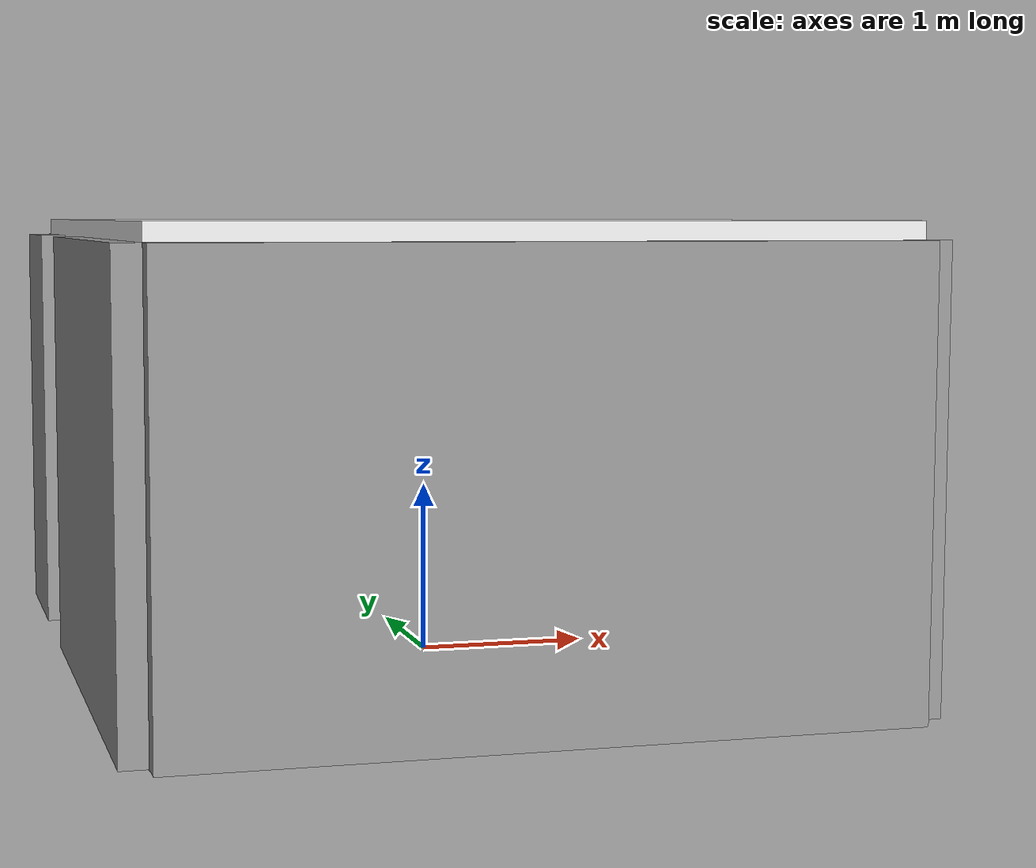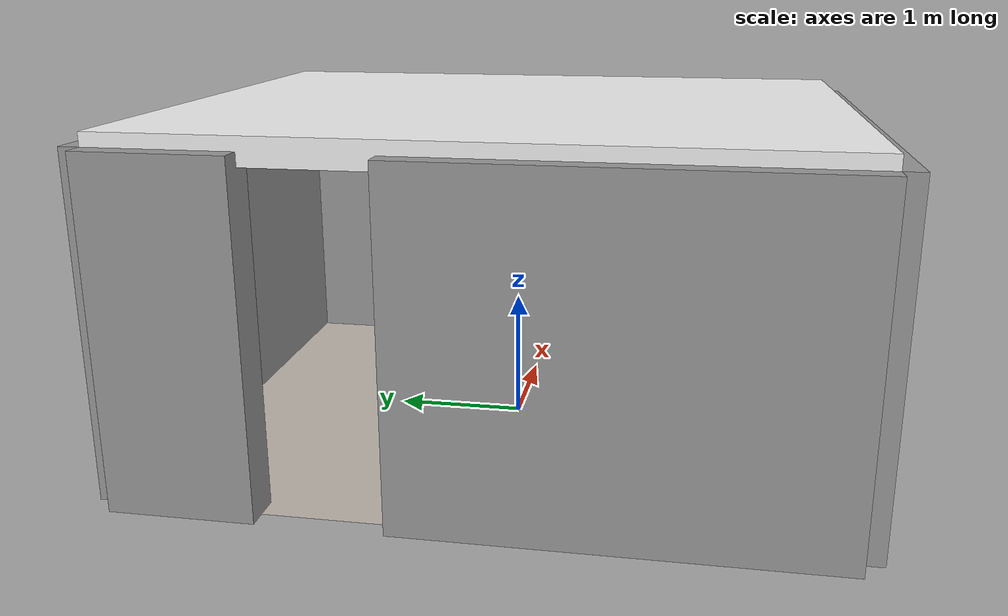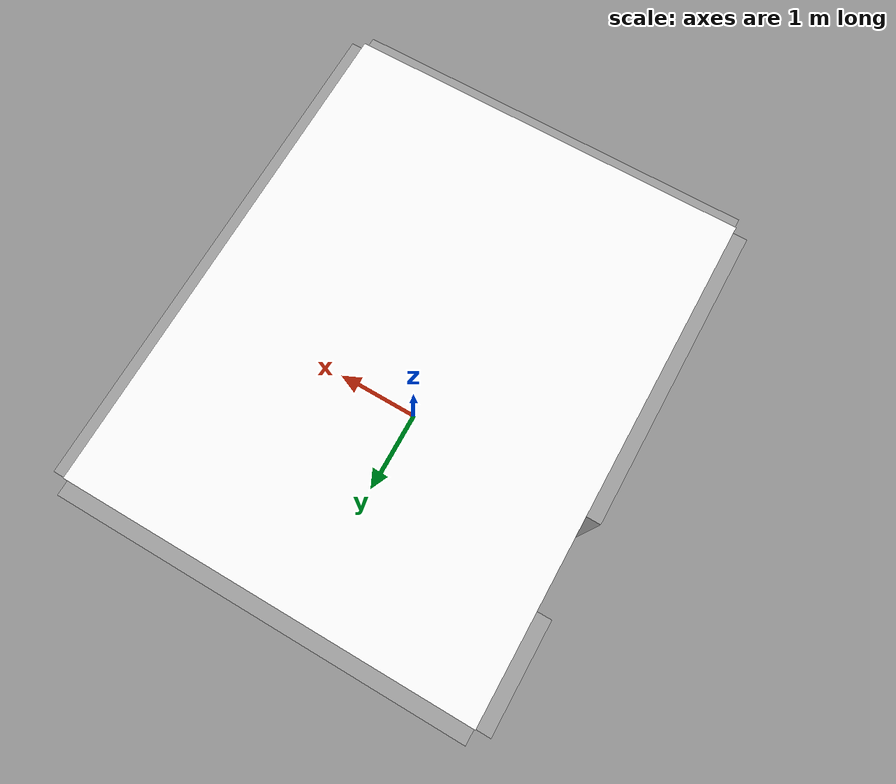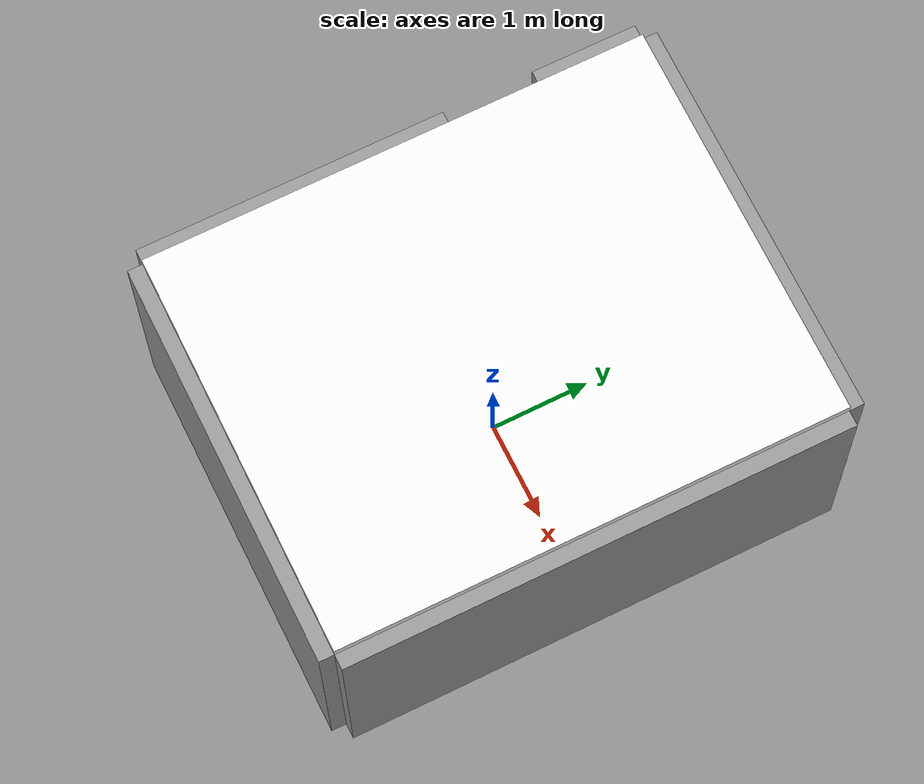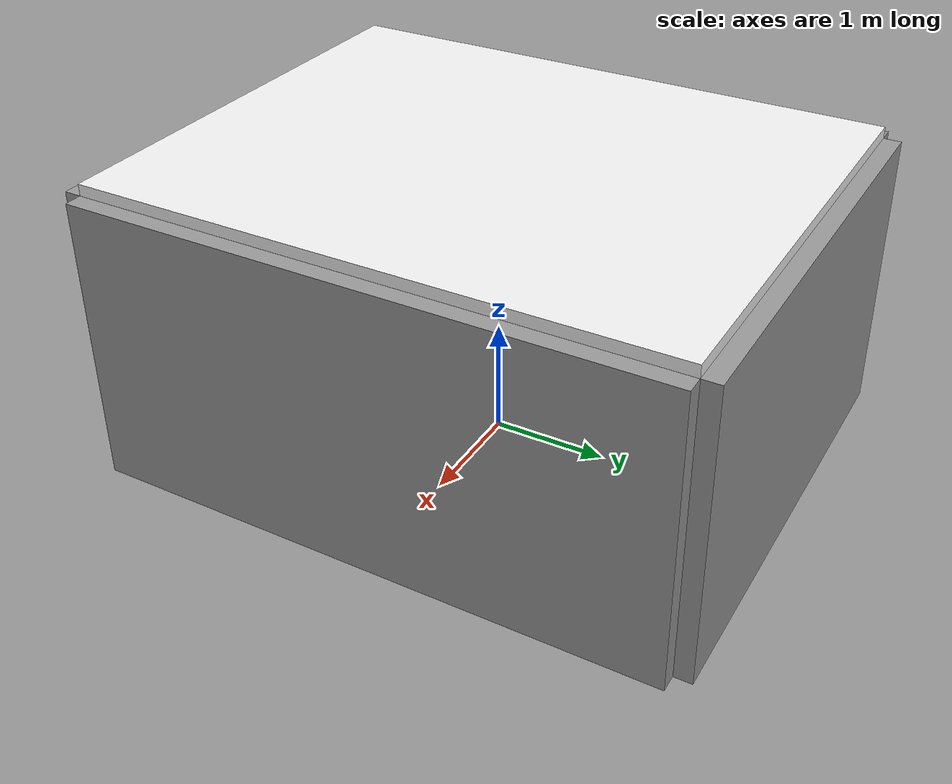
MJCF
<mujoco model="bedroom">
  <visual>
    <headlight diffuse="0.6 0.6 0.6" ambient="0.3 0.3 0.3" specular="0 0 0"/>
    <rgba haze="0.15 0.25 0.35 1"/>
    <global azimuth="-120" elevation="-20"/>
  </visual>

  <asset>
    <texture name="carpet_tex" type="2d" file="../common/textures/carpet.png"/>
    <texture name="gray_wall_real_tex" type="2d" file="../common/textures/gray_wall_real.png"/>

    <material name="floor_material" texture="carpet_tex"
              texrepeat="8 8" specular="0.3" shininess="0.2"/>
    <material name="wall_material" texture="gray_wall_real_tex"
              texrepeat="4 4" specular="0.05" shininess="0.01"/>
  </asset>

  <worldbody>
    <!-- Floor -->
    <geom name="floor" type="plane" size="2.0 2.5 0.1"
          pos="0 0 0" material="floor_material" friction="1.0 0.05 0.01"/>

    <!-- North wall -->
    <geom name="wall_north" type="box"
          size="2.0 0.15 1.25"
          pos="0 2.5 1.25"
          material="wall_material"/>

    <!-- South wall -->
    <geom name="wall_south" type="box"
          size="2.0 0.15 1.25"
          pos="0 -2.5 1.25"
          material="wall_material"/>

    <!-- East wall -->
    <geom name="wall_east" type="box"
          size="0.15 2.5 1.25"
          pos="2.0 0 1.25"
          material="wall_material"/>

    <!-- West wall with opening -->
    <geom name="wall_west_bottom" type="box"
          size="0.15 1.525 1.25"
          pos="-2.0 -0.9750000000000001 1.25"
          material="wall_material"/>
    <geom name="wall_west_top" type="box"
          size="0.15 0.525 1.25"
          pos="-2.0 1.975 1.25"
          material="wall_material"/>
    <!-- door opening: width=0.9m, offset=1m -->

    <!-- Ceiling -->
    <geom name="ceiling" type="box" size="2.0 2.5 0.1"
          pos="0 0 2.5" rgba="0.95 0.95 0.95 1"/>
  </worldbody>
</mujoco>
